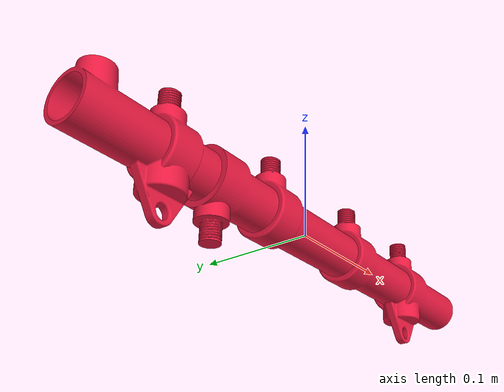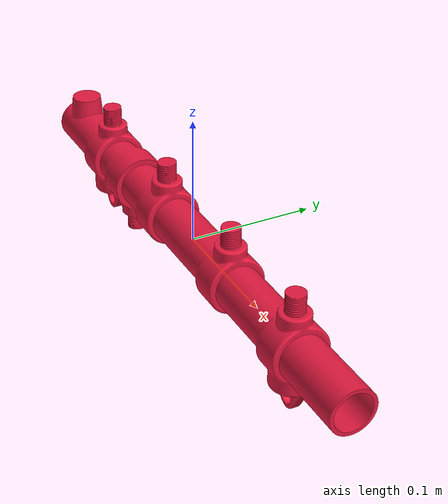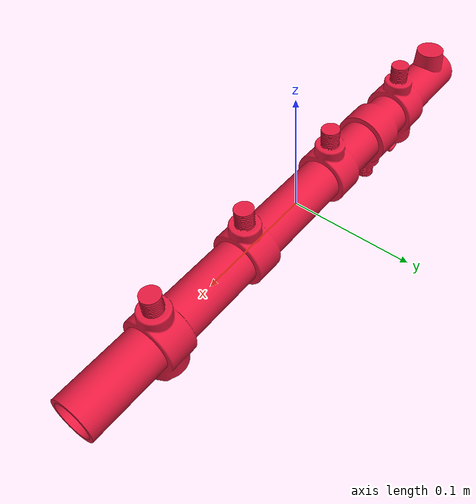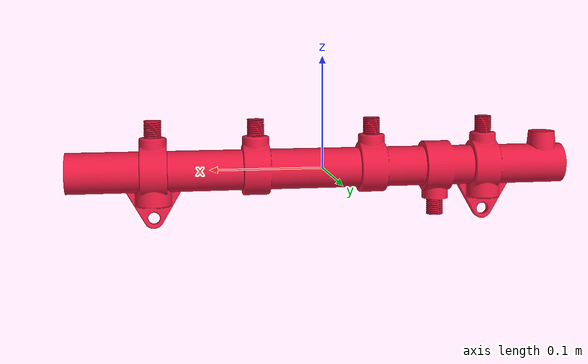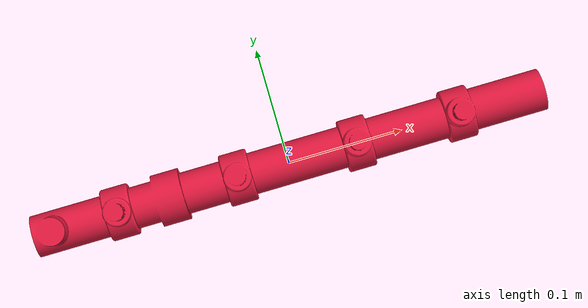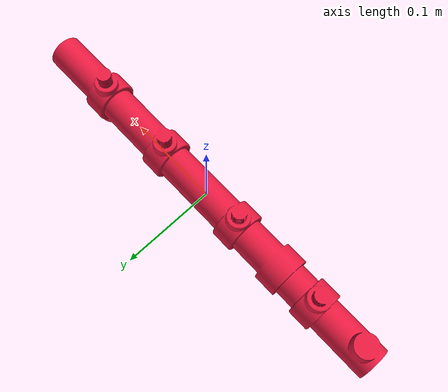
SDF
<?xml version="1.0" ?>
<sdf version="1.0">
  <model name="3d_common_line">
    <link name="link">
      <inertial>
        <pose>0 0 0 0 0 0</pose>
        <mass>0.1</mass>
        <inertia>
          <ixx>0.000901820451840421</ixx>
          <ixy>0.0000000130817604737549</ixy>
          <ixz>0.0000569922654045029</ixz>
          <iyy>0.0330493409127238</iyy>
          <iyz>-0.000000000102659592476005</iyz>
          <izz>0.0326789402829885</izz>
        </inertia>
      </inertial>
      <collision name="collision">
        <pose>0 0 0 0 0 0</pose>
        <geometry>
          <mesh>
            <uri>model://3d_common_line/common-line_003x.stl</uri>
          </mesh>
        </geometry>
        <surface>
          <friction>
            <ode>
              <mu>999999999999999.0</mu>
              <mu2>999999999999999.0</mu2>
            </ode>
          </friction>
          <contact>
            <ode>
              <kp>999999999999999.0</kp>
              <kd>999999999999999.0</kd>
              <min_depth>0.001</min_depth>
              <max_vel>0</max_vel>
            </ode>
          </contact>
        </surface>
      </collision>
      <visual name="visual">
        <pose>0 0 0 0 0 0</pose>
        <geometry>
          <mesh>
            <uri>model://3d_common_line/common-line_003x.stl</uri>
          </mesh>
        </geometry>
<material>
          <ambient>0.9 0.1 0.25 1</ambient>
          <diffuse>0.9 0.1 0.25 1</diffuse>
          <specular>0.01 0.01 0.01 1</specular>
          <emissive>0 0 0 1</emissive>
          <shader type='vertex'>
            <normal_map>__default__</normal_map>
          </shader>
        </material>
        <cast_shadows>1</cast_shadows>
        <transparency>0</transparency>
      </visual>
    </link>
<static>0</static>
    <allow_auto_disable>1</allow_auto_disable>
  </model>
</sdf>
